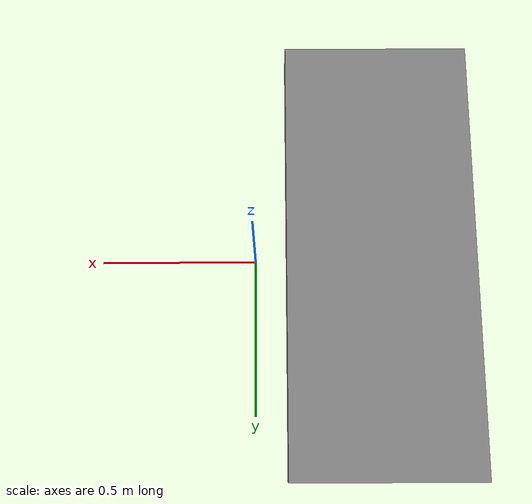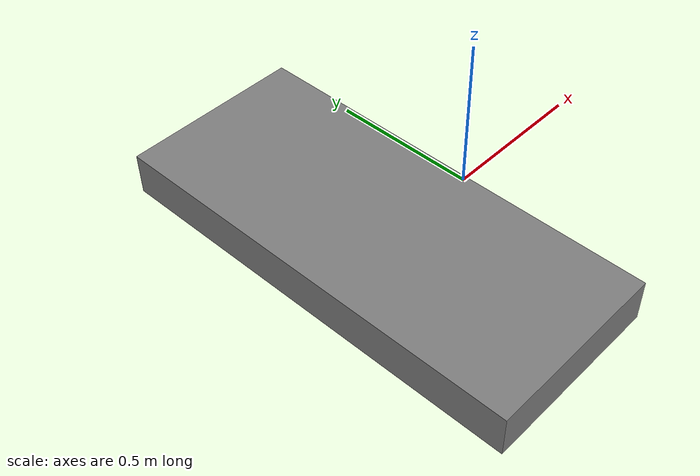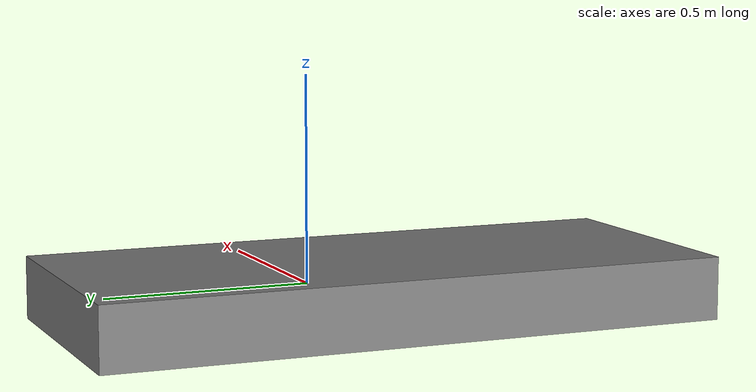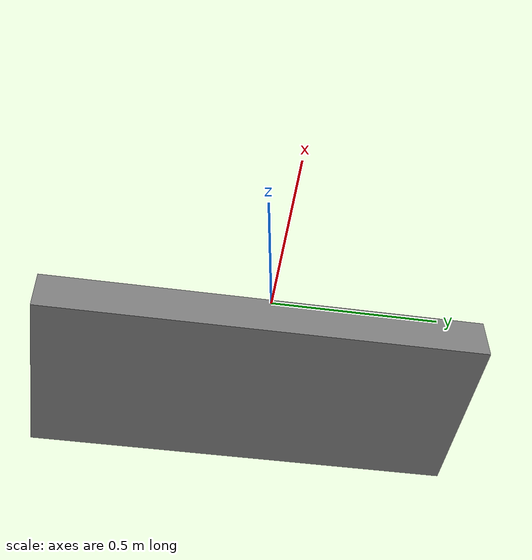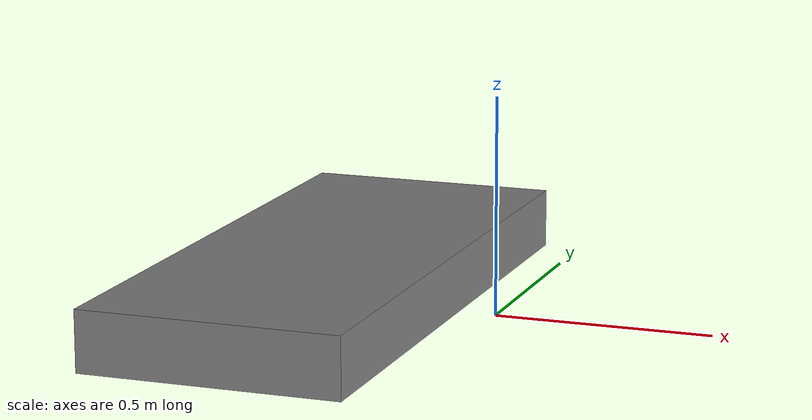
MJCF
<mujoco model="platform_box">
    <worldbody>
        <body name="platform_box" pos="0.0 0.0 0.0" quat="1 0 0 0">
            <geom name="platform_box" pos="-0.4 0 0.06" size="0.3 0.7 0.07"  rgba="0.5 0.5 0.5 1.0" type="box" mass="0.01" friction="0.5 0.001 0.0001" priority="1"/>

        </body>
    </worldbody>
</mujoco>
